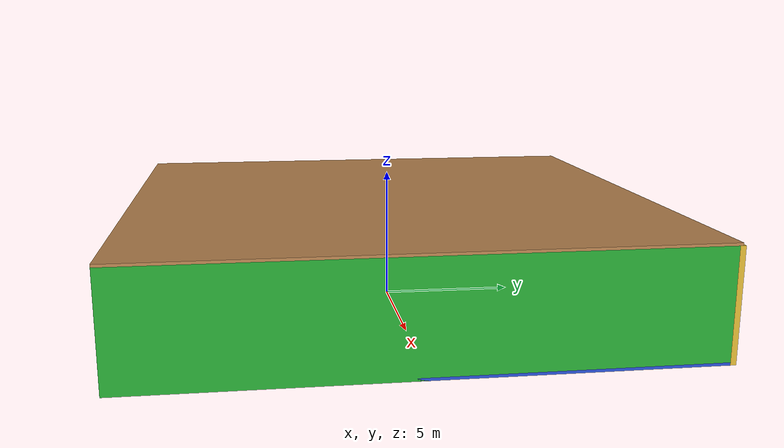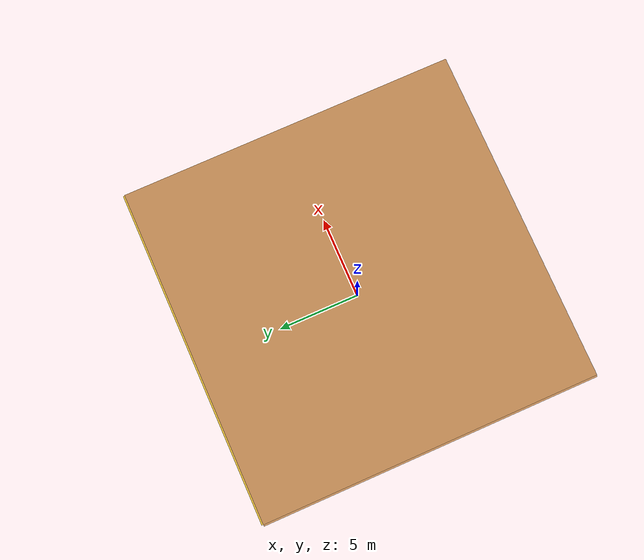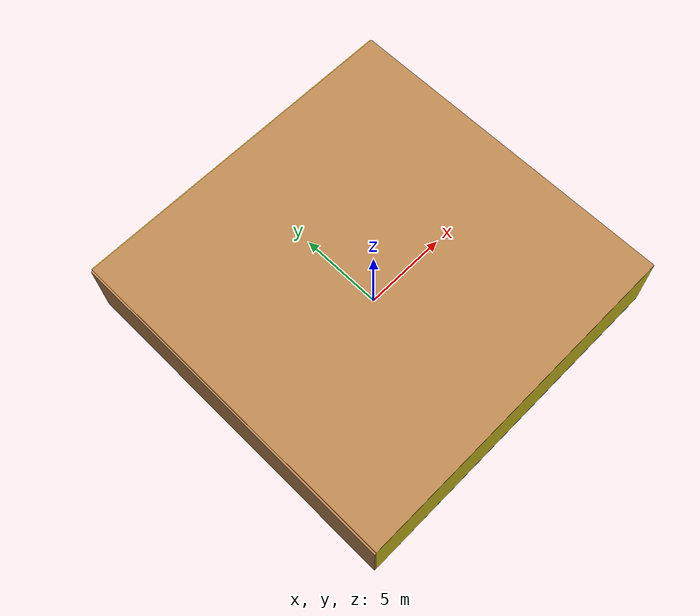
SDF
<sdf version="1.4">
 <world name="default">
  <physics type="ode">
   <max_step_size>0.001</max_step_size>
   <real_time_factor>1</real_time_factor>
   <real_time_update_rate>1000</real_time_update_rate>
   <gravity>0 0 -9.8</gravity>
  </physics>
  <scene><ambient>0.4 0.4 0.4 1</ambient><background>0.7 0.7 0.7 1</background><shadows>1</shadows></scene>
  <model name="Surrounding">
   <static>1</static>
   <link name="Ceiling">
    <collision name="Ceiling_Collision"><geometry><box><size>20 20 0.1</size></box></geometry></collision>
    <visual name="Ceiling_Visual">
     <geometry><box><size>20 20 0.1</size></box></geometry>
     <material>
      <script><uri>file://media/materials/scripts/gazebo.material</uri><name>Gazebo/Wood</name></script>
     </material>
    </visual>
    <pose>0 0 4.05 0 0 0</pose>
   </link>
   <link name="Wall_South">
    <collision name="Wall_South_Collision">
     <geometry><box><size>20 0 4</size></box></geometry>
     <pose>0 0 2 0 -0 0</pose>
    </collision>
    <visual name="Wall_South_Visual">
     <pose>0 0 2 0 -0 0</pose>
     <geometry><box><size>20 0 4</size></box></geometry>
     <material>
      <script><uri>file://media/materials/scripts/gazebo.material</uri><name>Gazebo/Yellow</name></script>
     </material>
    </visual>
    <velocity_decay><linear>0</linear><angular>0</angular></velocity_decay>
    <pose>0 -10 0 0 -0 0</pose>
   </link>
   <link name="Wall_East">
    <collision name="Wall_21_Collision">
     <geometry><box><size>20 0 4</size></box></geometry>
     <pose>0 0 2 0 -0 0</pose>
    </collision>
    <visual name="Wall_21_Visual">
     <pose>0 0 2 0 -0 0</pose>
     <geometry><box><size>20 0 4</size></box></geometry>
     <material>
      <script><uri>file://media/materials/scripts/gazebo.material</uri><name>Gazebo/Green</name></script>
     </material>
    </visual>
    <velocity_decay><linear>0</linear><angular>0</angular></velocity_decay>
    <pose>10 0 0 0 -0 1.5708</pose>
   </link>
   <link name="Wall_North">
    <collision name="Wall_22_Collision">
     <geometry><box><size>20 0.2 4</size></box></geometry>
     <pose>0 0 2 0 -0 0</pose>
    </collision>
    <visual name="Wall_22_Visual">
     <pose>0 0 2 0 -0 0</pose>
     <geometry><box><size>20 0.2 4</size></box></geometry>
     <material>
      <script><uri>file://media/materials/scripts/gazebo.material</uri><name>Gazebo/Gold</name></script>
     </material>
    </visual>
    <velocity_decay><linear>0</linear><angular>0</angular></velocity_decay>
    <pose>0 10 0 0 -0 0</pose>
   </link>
   <link name="Wall_West">
    <collision name="Wall_23_Collision">
     <geometry><box><size>20 0.2 4</size></box></geometry>
     <pose>0 0 2 0 -0 0</pose>
    </collision>
    <visual name="Wall_23_Visual">
     <pose>0 0 2 0 -0 0</pose>
     <geometry><box><size>20 0.2 4</size></box></geometry>
     <material>
      <script><uri>file://media/materials/scripts/gazebo.material</uri><name>Gazebo/Wood</name></script>
     </material>
    </visual>
    <velocity_decay><linear>0</linear><angular>0</angular></velocity_decay>
    <pose>-10 0 0 0 0 -1.5708</pose>
   </link>
   <link name="Ground_link">
    <collision name="collision">
     <pose>0 0 .05 0 -0 0</pose>
     <geometry><box><size>20 20 0.1</size></box></geometry>
    </collision>
    <visual name="visual">
     <pose>0 0 .05 0 -0 0</pose>
     <geometry><box><size>20 20 0.1</size></box></geometry>
     <material>
      <script><uri>file://media/materials/scripts/gazebo.material</uri><name>Gazebo/Blue</name></script>
     </material>
    </visual>
   </link>
   <static>1</static>
  </model>
  <spherical_coordinates>
   <surface_model>EARTH_WGS84</surface_model>
   <latitude_deg>0</latitude_deg>
   <longitude_deg>0</longitude_deg>
   <elevation>0</elevation>
   <heading_deg>0</heading_deg>
  </spherical_coordinates>
  <light name="lightball_0" type="diffuse">
   <diffuse>0.8 0.8 0.8 1</diffuse>
   <specular>0.2 0.2 0.2 1</specular>
   <attenuation>
    <range>100</range>
    <constant>0.7</constant>
    <linear>0.01</linear>
    <quadratic>0.001</quadratic>
   </attenuation>
   <direction>-0.5 0.1 -0.9</direction>
   <pose>5.40174340012 -0.618263477442 1.56113410177 0 0 0</pose>
  </light>
  <light name="lightball_1" type="diffuse">
   <diffuse>0.8 0.8 0.8 1</diffuse>
   <specular>0.2 0.2 0.2 1</specular>
   <attenuation>
    <range>100</range>
    <constant>0.7</constant>
    <linear>0.01</linear>
    <quadratic>0.001</quadratic>
   </attenuation>
   <direction>-0.5 0.1 -0.9</direction>
   <pose>6.88041542447 -3.7234573968 2.40885900968 0 0 0</pose>
  </light>
  <light name="lightball_2" type="diffuse">
   <diffuse>0.8 0.8 0.8 1</diffuse>
   <specular>0.2 0.2 0.2 1</specular>
   <attenuation>
    <range>100</range>
    <constant>0.7</constant>
    <linear>0.01</linear>
    <quadratic>0.001</quadratic>
   </attenuation>
   <direction>-0.5 0.1 -0.9</direction>
   <pose>-6.92321296708 -1.2348490811 2.59361165273 0 0 0</pose>
  </light>
  <light name="lightball_3" type="diffuse">
   <diffuse>0.8 0.8 0.8 1</diffuse>
   <specular>0.2 0.2 0.2 1</specular>
   <attenuation>
    <range>100</range>
    <constant>0.7</constant>
    <linear>0.01</linear>
    <quadratic>0.001</quadratic>
   </attenuation>
   <direction>-0.5 0.1 -0.9</direction>
   <pose>6.57981419834 -6.81354143256 3.03724425312 0 0 0</pose>
  </light>
  <light name="lightball_4" type="diffuse">
   <diffuse>0.8 0.8 0.8 1</diffuse>
   <specular>0.2 0.2 0.2 1</specular>
   <attenuation>
    <range>100</range>
    <constant>0.7</constant>
    <linear>0.01</linear>
    <quadratic>0.001</quadratic>
   </attenuation>
   <direction>-0.5 0.1 -0.9</direction>
   <pose>2.35126011476 -6.34789996815 1.75243909576 0 0 0</pose>
  </light>
  <include><uri>model://cabinet</uri><pose>-7.56498510439 -4.773153622 0 0 0 0.508406546938</pose></include>
  <include><uri>model://table</uri><pose>-8.19068610042 4.29657647429 0 0 0 1.34957072042</pose></include>
  <include><uri>model://cabinet</uri><pose>1.49878910664 -8.17309753144 0 0 0 1.61272019237</pose></include>
  <include>
   <uri>model://textured_shapes</uri>
   <pose>1.11354473122 3.71672269414 0 0 0 2.84859201012</pose>
  </include>
 </world>
</sdf>

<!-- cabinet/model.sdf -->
<sdf version="1.5">
  <model name="cabinet">
    <static>true</static>
    <link name="cabinet_bottom_plate">
      <inertial>
        <pose>0 0 -1 0 0 0</pose>
        <inertia>
          <ixx>2.050000</ixx>
          <ixy>0</ixy>
          <ixz>0</ixz>
          <iyy>2.050000</iyy>
          <iyz>0</iyz>
          <izz>2.050000</izz>
        </inertia>
        <mass>25.000000</mass>
      </inertial>
      <collision name="cabinet_bottom_plate_geom">
        <pose>0 0 0.010000 0 0 0</pose>
        <geometry>
          <box>
            <size>0.450000 0.450000 0.020000</size>
          </box>
        </geometry>
      </collision>
      <visual name="cabinet_bottom_plate_geom_visual">
        <pose>0 0 0.010000 0 0 0</pose>
        <geometry>
          <box>
            <size>0.450000 0.450000 0.020000</size>
          </box>
        </geometry>
        <material>
          <script>
            <uri>model://media/materials/scripts/gazebo.material</uri>
            <name>Gazebo/Wood</name>
          </script>
        </material>
      </visual>
      <collision name="cabinet_bottom_plate_geom_cabinet_back_plate">
        <pose>0.235000 0 0.510000 0 0 0</pose>
        <geometry>
          <box>
            <size>0.020000 0.450000 1.020000</size>
          </box>
        </geometry>
      </collision>
      <visual name="cabinet_bottom_plate_geom_cabinet_back_plate_visual">
        <pose>0.235000 0 0.510000 0 0 0</pose>
        <geometry>
          <box>
            <size>0.020000 0.450000 1.020000</size>
          </box>
        </geometry>
        <material>
          <script>
            <uri>model://media/materials/scripts/gazebo.material</uri>
            <name>Gazebo/Wood</name>
          </script>
        </material>
      </visual>
      <collision name="cabinet_bottom_plate_geom_cabinet_left_plate">
        <pose>0 0.235000 0.510000 0 0 0</pose>
        <geometry>
          <box>
            <size>0.450000 0.020000 1.020000</size>
          </box>
        </geometry>
      </collision>
      <visual name="cabinet_bottom_plate_geom_cabinet_left_plate_visual">
        <pose>0 0.235000 0.510000 0 0 0</pose>
        <geometry>
          <box>
            <size>0.450000 0.020000 1.020000</size>
          </box>
        </geometry>
        <material>
          <script>
            <uri>model://media/materials/scripts/gazebo.material</uri>
            <name>Gazebo/Wood</name>
          </script>
        </material>
      </visual>
      <collision name="cabinet_bottom_plate_geom_cabinet_middle_plate">
        <pose>0 0 0.510000 0 0 0</pose>
        <geometry>
          <box>
            <size>0.450000 0.450000 0.020000</size>
          </box>
        </geometry>
      </collision>
      <visual name="cabinet_bottom_plate_geom_cabinet_middle_plate_visual">
        <pose>0 0 0.510000 0 0 0</pose>
        <geometry>
          <box>
            <size>0.450000 0.450000 0.020000</size>
          </box>
        </geometry>
        <material>
          <script>
            <uri>model://media/materials/scripts/gazebo.material</uri>
            <name>Gazebo/Wood</name>
          </script>
        </material>
      </visual>
      <collision name="cabinet_bottom_plate_geom_cabinet_right_plate">
        <pose>0 -0.235000 0.510000 0 0 0</pose>
        <geometry>
          <box>
            <size>0.450000 0.020000 1.020000</size>
          </box>
        </geometry>
      </collision>
      <visual name="cabinet_bottom_plate_geom_cabinet_right_plate_visual">
        <pose>0 -0.235000 0.510000 0 0 0</pose>
        <geometry>
          <box>
            <size>0.450000 0.020000 1.020000</size>
          </box>
        </geometry>
        <material>
          <script>
            <uri>model://media/materials/scripts/gazebo.material</uri>
            <name>Gazebo/Wood</name>
          </script>
        </material>
      </visual>
      <collision name="cabinet_bottom_plate_geom_cabinet_top_plate">
        <pose>0 0 1.010000 0 0 0</pose>
        <geometry>
          <box>
            <size>0.450000 0.450000 0.020000</size>
          </box>
        </geometry>
      </collision>
      <visual name="cabinet_bottom_plate_geom_cabinet_top_plate_visual">
        <pose>0 0 1.010000 0 0 0</pose>
        <geometry>
          <box>
            <size>0.450000 0.450000 0.020000</size>
          </box>
        </geometry>
        <material>
          <script>
            <uri>model://media/materials/scripts/gazebo.material</uri>
            <name>Gazebo/Wood</name>
          </script>
        </material>
      </visual>
    </link>
  </model>
</sdf>

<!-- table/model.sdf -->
<sdf version="1.5">
  <model name="table">
    <static>true</static>
    <link name="link">
      <collision name="surface">
        <pose>0 0 1.0 0 0 0</pose>
        <geometry>
          <box>
            <size>1.5 0.8 0.03</size>
          </box>
        </geometry>
        <surface>
          <friction>
            <ode>
              <mu>0.6</mu>
              <mu2>0.6</mu2>
            </ode>
          </friction>
        </surface>
      </collision>
      <visual name="visual1">
        <pose>0 0 1.0 0 0 0</pose>
        <geometry>
          <box>
            <size>1.5 0.8 0.03</size>
          </box>
        </geometry>
        <material>
          <script>
            <uri>model://media/materials/scripts/gazebo.material</uri>
            <name>Gazebo/Wood</name>
          </script>
        </material>
      </visual>
      <collision name="front_left_leg">
        <pose>0.68 0.38 0.5 0 0 0</pose>
        <geometry>
          <cylinder>
            <radius>0.02</radius>
            <length>1.0</length>
          </cylinder>
        </geometry>
      </collision>
      <visual name="front_left_leg">
        <pose>0.68 0.38 0.5 0 0 0</pose>
        <geometry>
          <cylinder>
            <radius>0.02</radius>
            <length>1.0</length>
          </cylinder>
        </geometry>
        <material>
          <script>
            <uri>model://media/materials/scripts/gazebo.material</uri>
            <name>Gazebo/Grey</name>
          </script>
        </material>
      </visual>
      <collision name="front_right_leg">
        <pose>0.68 -0.38 0.5 0 0 0</pose>
        <geometry>
          <cylinder>
            <radius>0.02</radius>
            <length>1.0</length>
          </cylinder>
        </geometry>
      </collision>
      <visual name="front_right_leg">
        <pose>0.68 -0.38 0.5 0 0 0</pose>
        <geometry>
          <cylinder>
            <radius>0.02</radius>
            <length>1.0</length>
          </cylinder>
        </geometry>
        <material>
          <script>
            <uri>model://media/materials/scripts/gazebo.material</uri>
            <name>Gazebo/Grey</name>
          </script>
        </material>
      </visual>
      <collision name="back_right_leg">
        <pose>-0.68 -0.38 0.5 0 0 0</pose>
        <geometry>
          <cylinder>
            <radius>0.02</radius>
            <length>1.0</length>
          </cylinder>
        </geometry>
      </collision>
      <visual name="back_right_leg">
        <pose>-0.68 -0.38 0.5 0 0 0</pose>
        <geometry>
          <cylinder>
            <radius>0.02</radius>
            <length>1.0</length>
          </cylinder>
        </geometry>
        <material>
          <script>
            <uri>model://media/materials/scripts/gazebo.material</uri>
            <name>Gazebo/Grey</name>
          </script>
        </material>
      </visual>
      <collision name="back_left_leg">
        <pose>-0.68 0.38 0.5 0 0 0</pose>
        <geometry>
          <cylinder>
            <radius>0.02</radius>
            <length>1.0</length>
          </cylinder>
        </geometry>
      </collision>
      <visual name="back_left_leg">
        <pose>-0.68 0.38 0.5 0 0 0</pose>
        <geometry>
          <cylinder>
            <radius>0.02</radius>
            <length>1.0</length>
          </cylinder>
        </geometry>
        <material>
          <script>
            <uri>model://media/materials/scripts/gazebo.material</uri>
            <name>Gazebo/Grey</name>
          </script>
        </material>
      </visual>
    </link>
  </model>
</sdf>

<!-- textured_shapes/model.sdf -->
<sdf version="1.6">
  <model name="textured_shapes">
    <pose>0 0 0.5 0 0 0</pose>
    <link name="box">
      <pose>0 -1.5 0 0 0 0</pose>
      <collision name="collision">
        <geometry>
          <box>
            <size>1 1 1</size>
          </box>
        </geometry>
      </collision>
      <visual name="visual">
        <geometry>
          <box>
            <size>1 1 1</size>
          </box>
        </geometry>
        <material>
          <script>
            <uri>model://../model_source/models/textured_shapes/materials/scripts</uri>
            <uri>model://../model_source/models/textured_shapes/materials/textures</uri>
            <name>TexturedShape/Squares</name>
          </script>
        </material>
      </visual>
    </link>
    <link name="sphere">
      <collision name="collision">
        <geometry>
          <sphere>
            <radius>0.5</radius>
          </sphere>
        </geometry>
      </collision>
      <visual name="visual">
        <geometry>
          <sphere>
            <radius>0.5</radius>
          </sphere>
        </geometry>
        <material>
          <script>
            <uri>model://../model_source/models/textured_shapes/materials/scripts</uri>
            <uri>model://../model_source/models/textured_shapes/materials/textures</uri>
            <name>TexturedShape/Squares</name>
          </script>
        </material>
      </visual>
    </link>
    <link name="cylinder">
      <pose>0 1.5 0 0 0 0</pose>
      <collision name="collision">
        <geometry>
          <cylinder>
            <radius>0.5</radius>
            <length>1</length>
          </cylinder>
        </geometry>
      </collision>
      <visual name="visual">
        <geometry>
          <cylinder>
            <radius>0.5</radius>
            <length>1</length>
          </cylinder>
        </geometry>
        <material>
          <script>
            <uri>model://../model_source/models/textured_shapes/materials/scripts</uri>
            <uri>model://../model_source/models/textured_shapes/materials/textures</uri>
            <name>TexturedShape/Squares</name>
          </script>
        </material>
      </visual>
    </link>
  </model>
</sdf>
